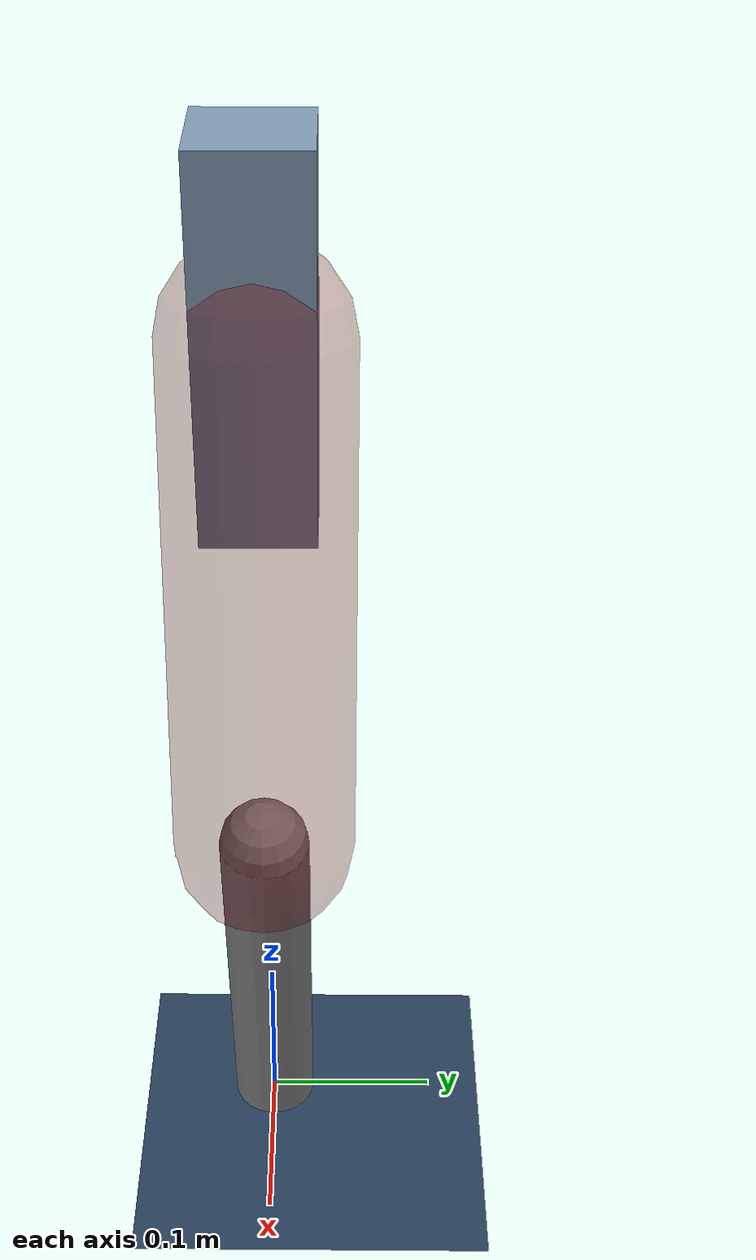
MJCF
<mujoco model="Hopper2D">
	<compiler inertiafromgeom="true" angle="radian" />
	<option timestep="0.001" integrator="implicit" cone="elliptic" solver="Newton" tolerance="1e-10" />

	<default>
		<geom contype="1" conaffinity="1" condim="3" friction="2 0.005 0.0001" solref="0.005 1" />
		<joint limited="true" damping="0.1" />
	</default>

	<asset>
		<texture name="skybox" type="skybox" builtin="gradient" rgb1=".4 .6 .8" rgb2="0 0 0" width="800" height="800" />
		<texture name="grid" type="2d" builtin="checker" rgb1=".1 .2 .3" rgb2=".2 .3 .4" width="300" height="300" mark="edge" markrgb=".2 .3 .4" />
		<material name="ground" texture="grid" texrepeat="1 1" texuniform="true" reflectance="0.1" />
		<material name="leg" rgba="0.5 0.6 0.7 1" />
	</asset>

	<worldbody>

		<geom name="floor" type="plane" size="5 5 0.25" material="ground" />

		<light directional="false" diffuse="0.8 0.8 0.8" specular="0.3 0.3 0.3" pos="0 0 2" dir="0 0 -1" />
		<light mode="targetbodycom" target="base" directional="false" diffuse="0.8 0.8 0.8" specular="0.3 0.3 0.3" pos="0 0 2" dir="0 0 -1" />

		<camera name="fixed" pos="0 -2 1" xyaxes="1 0 0 0 0 1" />
		<camera name="tracking" mode="trackcom" pos="0 -3 1" />

		<body name="root" pos="0 0 0.5248849407398557">
			<joint name="slide_x" type="slide" axis="1 0 0" range="-100 100" />
			<joint name="slide_z" type="slide" axis="0 0 1" range="0 10" />

			<body name="base" pos="0 0 0">
				<geom name="torso" type="box" size="0.03 0.03 0.1" mass="3.3049999999999997" material="leg" />

				<body name="link1" pos="0 0 0" euler="0 1.3860580042957051 0">
					<joint type="hinge" axis="0 -1 0" pos="0 0 0" name="hinge1" limited="true" range="-3.14 3.14" stiffness="0" damping="0.1" />
					<geom name="thigh" type="capsule" fromto="0 0 0 0.2798994934970985 0 0" size="0.05" rgba="0.5 0 0 0.3" mass="0.934838683092456" />

					<body name="link2" pos="0.2798994934970985 0 0" euler="0 0.38776746771392423 0">
						<joint type="hinge" axis="0 -1 0" pos="0 0 0" name="hinge2" limited="true" range="-3.14 3.14" stiffness="0" damping="0.1" />
						<geom name="shank" type="capsule" fromto="0 0 0 0.2549854472427573 0 0" size="0.025" mass="0.4465883577942058" />

					</body>
				</body>
			</body>
		</body>
	</worldbody>

	<actuator>
		<motor name="torque1" joint="hinge1" ctrlrange="-164.25312798995031 164.25312798995031" ctrllimited="true" gear="1" />
		<motor name="torque2" joint="hinge2" ctrlrange="-131.47727037977958 131.47727037977958" ctrllimited="true" gear="1" />
	</actuator>
</mujoco>
